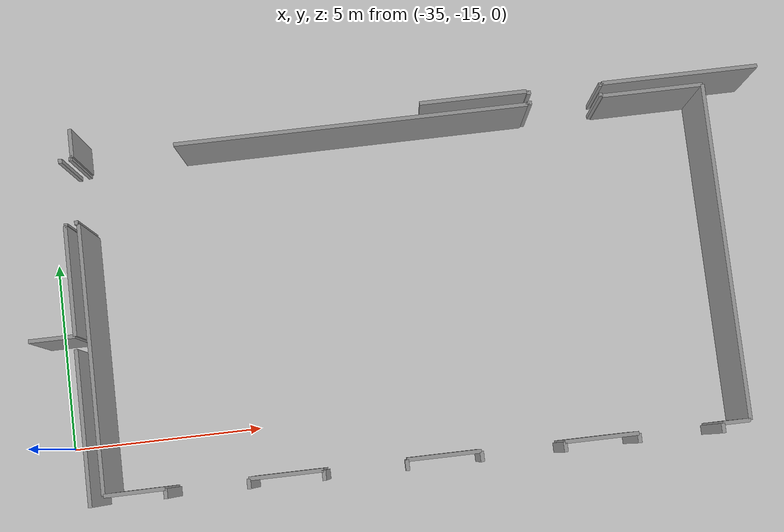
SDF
<sdf version="1.6">
 <world name="default">
  <model name="ground_plane">
   <static>1</static>
   <link name="link">
    <collision name="collision">
     <geometry><plane><normal>0 0 1</normal><size>100 100</size></plane></geometry>
     <surface><friction><ode><mu>100</mu><mu2>50</mu2></ode></friction></surface>
    </collision>
    <visual name="visual">
     <cast_shadows>0</cast_shadows>
     <geometry><plane><normal>0 0 1</normal><size>100 100</size></plane></geometry>
     <material>
      <script><uri>file://media/materials/scripts/gazebo.material</uri><name>Gazebo/Grey</name></script>
     </material>
    </visual>
   </link>
  </model>
  <model name="0510032261_A_40_1_103">
   <static>1</static>
   <link name="Wall_23">
    <collision name="Wall_23_Collision">
     <geometry><box><size>0.111944091487 0.1 2.5</size></box></geometry>
     <pose>0.0559720457433 0 1.25 0 0 0</pose>
    </collision>
    <visual name="Wall_23_Visual">
     <pose>0.0559720457433 0 1.25 0 0 0</pose>
     <geometry><box><size>0.111944091487 0.1 2.5</size></box></geometry>
     <material>
      <script><uri>file://media/materials/scripts/gazebo.material</uri><name>Gazebo/Grey</name></script>
      <ambient>1 1 1 1</ambient>
     </material>
    </visual>
    <pose>14.9550190597 -24.1386277001 0 0 0 -1.57079632679</pose>
   </link>
   <link name="Wall_24">
    <collision name="Wall_24_Collision">
     <geometry><box><size>0.0569250317662 0.1 2.5</size></box></geometry>
     <pose>0.0284625158831 0 1.25 0 0 0</pose>
    </collision>
    <visual name="Wall_24_Visual">
     <pose>0.0284625158831 0 1.25 0 0 0</pose>
     <geometry><box><size>0.0569250317662 0.1 2.5</size></box></geometry>
     <material>
      <script><uri>file://media/materials/scripts/gazebo.material</uri><name>Gazebo/Grey</name></script>
      <ambient>1 1 1 1</ambient>
     </material>
    </visual>
    <pose>14.9550190597 -25.8360864041 0 0 0 -1.57079632679</pose>
   </link>
   <link name="Wall_25">
    <collision name="Wall_25_Collision">
     <geometry><box><size>0.0237611181703 0.1 2.5</size></box></geometry>
     <pose>0.0118805590851 0 1.25 0 0 0</pose>
    </collision>
    <visual name="Wall_25_Visual">
     <pose>0.0118805590851 0 1.25 0 0 0</pose>
     <geometry><box><size>0.0237611181703 0.1 2.5</size></box></geometry>
     <material>
      <script><uri>file://media/materials/scripts/gazebo.material</uri><name>Gazebo/Grey</name></script>
      <ambient>1 1 1 1</ambient>
     </material>
    </visual>
    <pose>14.9550190597 -25.8930114358 0 0 0 3.14159265359</pose>
   </link>
   <link name="Wall_26">
    <collision name="Wall_26_Collision">
     <geometry><box><size>2.84904701398 0.1 2.5</size></box></geometry>
     <pose>1.42452350699 0 1.25 0 0 0</pose>
    </collision>
    <visual name="Wall_26_Visual">
     <pose>1.42452350699 0 1.25 0 0 0</pose>
     <geometry><box><size>2.84904701398 0.1 2.5</size></box></geometry>
     <material>
      <script><uri>file://media/materials/scripts/gazebo.material</uri><name>Gazebo/Grey</name></script>
      <ambient>1 1 1 1</ambient>
     </material>
    </visual>
    <pose>14.9312579416 -25.8930114358 0 0 0 -1.57079632679</pose>
   </link>
   <link name="Wall_27">
    <collision name="Wall_27_Collision">
     <geometry><box><size>1.18996188056 0.1 2.5</size></box></geometry>
     <pose>0.59498094028 0 1.25 0 0 0</pose>
    </collision>
    <visual name="Wall_27_Visual">
     <pose>0.59498094028 0 1.25 0 0 0</pose>
     <geometry><box><size>1.18996188056 0.1 2.5</size></box></geometry>
     <material>
      <script><uri>file://media/materials/scripts/gazebo.material</uri><name>Gazebo/Grey</name></script>
      <ambient>1 1 1 1</ambient>
     </material>
    </visual>
    <pose>14.9312579416 -28.7420584498 0 0 0 3.14159265359</pose>
   </link>
   <link name="Wall_51">
    <collision name="Wall_51_Collision">
     <geometry><box><size>3.9998729352 0.1 2.5</size></box></geometry>
     <pose>1.9999364676 0 1.25 0 0 0</pose>
    </collision>
    <visual name="Wall_51_Visual">
     <pose>1.9999364676 0 1.25 0 0 0</pose>
     <geometry><box><size>3.9998729352 0.1 2.5</size></box></geometry>
     <material>
      <script><uri>file://media/materials/scripts/gazebo.material</uri><name>Gazebo/Grey</name></script>
      <ambient>1 1 1 1</ambient>
     </material>
    </visual>
    <pose>14.9250317662 -29.0768742058 0 0 0 -1.57079632679</pose>
   </link>
   <link name="Wall_159">
    <collision name="Wall_159_Collision">
     <geometry><box><size>2.7876747141 0.1 2.5</size></box></geometry>
     <pose>1.39383735705 0 1.25 0 0 0</pose>
    </collision>
    <visual name="Wall_159_Visual">
     <pose>1.39383735705 0 1.25 0 0 0</pose>
     <geometry><box><size>2.7876747141 0.1 2.5</size></box></geometry>
     <material>
      <script><uri>file://media/materials/scripts/gazebo.material</uri><name>Gazebo/Grey</name></script>
      <ambient>1 1 1 1</ambient>
     </material>
    </visual>
    <pose>24.3198221093 -23.7557814485 0 0 0 0.0</pose>
   </link>
   <link name="Wall_160">
    <collision name="Wall_160_Collision">
     <geometry><box><size>0.0411689961881 0.1 2.5</size></box></geometry>
     <pose>0.020584498094 0 1.25 0 0 0</pose>
    </collision>
    <visual name="Wall_160_Visual">
     <pose>0.020584498094 0 1.25 0 0 0</pose>
     <geometry><box><size>0.0411689961881 0.1 2.5</size></box></geometry>
     <material>
      <script><uri>file://media/materials/scripts/gazebo.material</uri><name>Gazebo/Grey</name></script>
      <ambient>1 1 1 1</ambient>
     </material>
    </visual>
    <pose>27.1074968234 -23.7557814485 0 0 0 -1.57079632679</pose>
   </link>
   <link name="Wall_161">
    <collision name="Wall_161_Collision">
     <geometry><box><size>0.108005082592 0.1 2.5</size></box></geometry>
     <pose>0.0540025412961 0 1.25 0 0 0</pose>
    </collision>
    <visual name="Wall_161_Visual">
     <pose>0.0540025412961 0 1.25 0 0 0</pose>
     <geometry><box><size>0.108005082592 0.1 2.5</size></box></geometry>
     <material>
      <script><uri>file://media/materials/scripts/gazebo.material</uri><name>Gazebo/Grey</name></script>
      <ambient>1 1 1 1</ambient>
     </material>
    </visual>
    <pose>27.1074968234 -23.7969504447 0 0 0 0.0</pose>
   </link>
   <link name="Wall_162">
    <collision name="Wall_162_Collision">
     <geometry><box><size>0.0823379923761 0.1 2.5</size></box></geometry>
     <pose>0.0411689961881 0 1.25 0 0 0</pose>
    </collision>
    <visual name="Wall_162_Visual">
     <pose>0.0411689961881 0 1.25 0 0 0</pose>
     <geometry><box><size>0.0823379923761 0.1 2.5</size></box></geometry>
     <material>
      <script><uri>file://media/materials/scripts/gazebo.material</uri><name>Gazebo/Grey</name></script>
      <ambient>1 1 1 1</ambient>
     </material>
    </visual>
    <pose>28.9888182973 -23.7969504447 0 0 0 0.0</pose>
   </link>
   <link name="Wall_163">
    <collision name="Wall_163_Collision">
     <geometry><box><size>0.025540025413 0.1 2.5</size></box></geometry>
     <pose>0.0127700127065 0 1.25 0 0 0</pose>
    </collision>
    <visual name="Wall_163_Visual">
     <pose>0.0127700127065 0 1.25 0 0 0</pose>
     <geometry><box><size>0.025540025413 0.1 2.5</size></box></geometry>
     <material>
      <script><uri>file://media/materials/scripts/gazebo.material</uri><name>Gazebo/Grey</name></script>
      <ambient>1 1 1 1</ambient>
     </material>
    </visual>
    <pose>29.0711562897 -23.7969504447 0 0 0 1.57079632679</pose>
   </link>
   <link name="Wall_164">
    <collision name="Wall_164_Collision">
     <geometry><box><size>4.06111817027 0.1 2.5</size></box></geometry>
     <pose>2.03055908513 0 1.25 0 0 0</pose>
    </collision>
    <visual name="Wall_164_Visual">
     <pose>2.03055908513 0 1.25 0 0 0</pose>
     <geometry><box><size>4.06111817027 0.1 2.5</size></box></geometry>
     <material>
      <script><uri>file://media/materials/scripts/gazebo.material</uri><name>Gazebo/Grey</name></script>
      <ambient>1 1 1 1</ambient>
     </material>
    </visual>
    <pose>29.0711562897 -23.7714104193 0 0 0 0.0</pose>
   </link>
   <link name="Wall_247">
    <collision name="Wall_247_Collision">
     <geometry><box><size>6.93595933926 0.1 2.5</size></box></geometry>
     <pose>3.46797966963 0 1.25 0 0 0</pose>
    </collision>
    <visual name="Wall_247_Visual">
     <pose>3.46797966963 0 1.25 0 0 0</pose>
     <geometry><box><size>6.93595933926 0.1 2.5</size></box></geometry>
     <material>
      <script><uri>file://media/materials/scripts/gazebo.material</uri><name>Gazebo/Grey</name></script>
      <ambient>1 1 1 1</ambient>
     </material>
    </visual>
    <pose>15.2763659466 -32.826429479 0 0 0 1.57079632679</pose>
   </link>
   <link name="Wall_248">
    <collision name="Wall_248_Collision">
     <geometry><box><size>0.0504447268107 0.1 2.5</size></box></geometry>
     <pose>0.0252223634053 0 1.25 0 0 0</pose>
    </collision>
    <visual name="Wall_248_Visual">
     <pose>0.0252223634053 0 1.25 0 0 0</pose>
     <geometry><box><size>0.0504447268107 0.1 2.5</size></box></geometry>
     <material>
      <script><uri>file://media/materials/scripts/gazebo.material</uri><name>Gazebo/Grey</name></script>
      <ambient>1 1 1 1</ambient>
     </material>
    </visual>
    <pose>15.2763659466 -25.8904701398 0 0 0 3.14159265359</pose>
   </link>
   <link name="Wall_249">
    <collision name="Wall_249_Collision">
     <geometry><box><size>0.101143583227 0.1 2.5</size></box></geometry>
     <pose>0.0505717916137 0 1.25 0 0 0</pose>
    </collision>
    <visual name="Wall_249_Visual">
     <pose>0.0505717916137 0 1.25 0 0 0</pose>
     <geometry><box><size>0.101143583227 0.1 2.5</size></box></geometry>
     <material>
      <script><uri>file://media/materials/scripts/gazebo.material</uri><name>Gazebo/Grey</name></script>
      <ambient>1 1 1 1</ambient>
     </material>
    </visual>
    <pose>15.2259212198 -25.8904701398 0 0 0 1.57079632679</pose>
   </link>
   <link name="Wall_250">
    <collision name="Wall_250_Collision">
     <geometry><box><size>0.0837357052097 0.1 2.5</size></box></geometry>
     <pose>0.0418678526048 0 1.25 0 0 0</pose>
    </collision>
    <visual name="Wall_250_Visual">
     <pose>0.0418678526048 0 1.25 0 0 0</pose>
     <geometry><box><size>0.0837357052097 0.1 2.5</size></box></geometry>
     <material>
      <script><uri>file://media/materials/scripts/gazebo.material</uri><name>Gazebo/Grey</name></script>
      <ambient>1 1 1 1</ambient>
     </material>
    </visual>
    <pose>15.2259212198 -24.2134688691 0 0 0 1.57079632679</pose>
   </link>
   <link name="Wall_251">
    <collision name="Wall_251_Collision">
     <geometry><box><size>0.0397712833545 0.1 2.5</size></box></geometry>
     <pose>0.0198856416773 0 1.25 0 0 0</pose>
    </collision>
    <visual name="Wall_251_Visual">
     <pose>0.0198856416773 0 1.25 0 0 0</pose>
     <geometry><box><size>0.0397712833545 0.1 2.5</size></box></geometry>
     <material>
      <script><uri>file://media/materials/scripts/gazebo.material</uri><name>Gazebo/Grey</name></script>
      <ambient>1 1 1 1</ambient>
     </material>
    </visual>
    <pose>15.2259212198 -24.1297331639 0 0 0 0.0</pose>
   </link>
   <link name="Wall_252">
    <collision name="Wall_252_Collision">
     <geometry><box><size>0.742820838628 0.1 2.5</size></box></geometry>
     <pose>0.371410419314 0 1.25 0 0 0</pose>
    </collision>
    <visual name="Wall_252_Visual">
     <pose>0.371410419314 0 1.25 0 0 0</pose>
     <geometry><box><size>0.742820838628 0.1 2.5</size></box></geometry>
     <material>
      <script><uri>file://media/materials/scripts/gazebo.material</uri><name>Gazebo/Grey</name></script>
      <ambient>1 1 1 1</ambient>
     </material>
    </visual>
    <pose>15.2656925032 -24.1297331639 0 0 0 1.57079632679</pose>
   </link>
   <link name="Wall_255">
    <collision name="Wall_255_Collision">
     <geometry><box><size>9.20088945362 0.1 2.5</size></box></geometry>
     <pose>4.60044472681 0 1.25 0 0 0</pose>
    </collision>
    <visual name="Wall_255_Visual">
     <pose>4.60044472681 0 1.25 0 0 0</pose>
     <geometry><box><size>9.20088945362 0.1 2.5</size></box></geometry>
     <material>
      <script><uri>file://media/materials/scripts/gazebo.material</uri><name>Gazebo/Grey</name></script>
      <ambient>1 1 1 1</ambient>
     </material>
    </visual>
    <pose>17.892249047 -24.1001270648 0 0 0 0.0</pose>
   </link>
   <link name="Wall_256">
    <collision name="Wall_256_Collision">
     <geometry><box><size>0.0278271918679 0.1 2.5</size></box></geometry>
     <pose>0.0139135959339 0 1.25 0 0 0</pose>
    </collision>
    <visual name="Wall_256_Visual">
     <pose>0.0139135959339 0 1.25 0 0 0</pose>
     <geometry><box><size>0.0278271918679 0.1 2.5</size></box></geometry>
     <material>
      <script><uri>file://media/materials/scripts/gazebo.material</uri><name>Gazebo/Grey</name></script>
      <ambient>1 1 1 1</ambient>
     </material>
    </visual>
    <pose>27.0931385006 -24.1001270648 0 0 0 1.57079632679</pose>
   </link>
   <link name="Wall_257">
    <collision name="Wall_257_Collision">
     <geometry><box><size>0.114612452351 0.1 2.5</size></box></geometry>
     <pose>0.0573062261753 0 1.25 0 0 0</pose>
    </collision>
    <visual name="Wall_257_Visual">
     <pose>0.0573062261753 0 1.25 0 0 0</pose>
     <geometry><box><size>0.114612452351 0.1 2.5</size></box></geometry>
     <material>
      <script><uri>file://media/materials/scripts/gazebo.material</uri><name>Gazebo/Grey</name></script>
      <ambient>1 1 1 1</ambient>
     </material>
    </visual>
    <pose>27.0931385006 -24.0722998729 0 0 0 0.0</pose>
   </link>
   <link name="Wall_258">
    <collision name="Wall_258_Collision">
     <geometry><box><size>0.0914866581957 0.1 2.5</size></box></geometry>
     <pose>0.0457433290978 0 1.25 0 0 0</pose>
    </collision>
    <visual name="Wall_258_Visual">
     <pose>0.0457433290978 0 1.25 0 0 0</pose>
     <geometry><box><size>0.0914866581957 0.1 2.5</size></box></geometry>
     <material>
      <script><uri>file://media/materials/scripts/gazebo.material</uri><name>Gazebo/Grey</name></script>
      <ambient>1 1 1 1</ambient>
     </material>
    </visual>
    <pose>28.959974587 -24.0722998729 0 0 0 0.0</pose>
   </link>
   <link name="Wall_259">
    <collision name="Wall_259_Collision">
     <geometry><box><size>0.0278271918679 0.1 2.5</size></box></geometry>
     <pose>0.0139135959339 0 1.25 0 0 0</pose>
    </collision>
    <visual name="Wall_259_Visual">
     <pose>0.0139135959339 0 1.25 0 0 0</pose>
     <geometry><box><size>0.0278271918679 0.1 2.5</size></box></geometry>
     <material>
      <script><uri>file://media/materials/scripts/gazebo.material</uri><name>Gazebo/Grey</name></script>
      <ambient>1 1 1 1</ambient>
     </material>
    </visual>
    <pose>29.0514612452 -24.0722998729 0 0 0 -1.57079632679</pose>
   </link>
   <link name="Wall_260">
    <collision name="Wall_260_Collision">
     <geometry><box><size>2.60355781449 0.1 2.5</size></box></geometry>
     <pose>1.30177890724 0 1.25 0 0 0</pose>
    </collision>
    <visual name="Wall_260_Visual">
     <pose>1.30177890724 0 1.25 0 0 0</pose>
     <geometry><box><size>2.60355781449 0.1 2.5</size></box></geometry>
     <material>
      <script><uri>file://media/materials/scripts/gazebo.material</uri><name>Gazebo/Grey</name></script>
      <ambient>1 1 1 1</ambient>
     </material>
    </visual>
    <pose>29.0514612452 -24.1001270648 0 0 0 0.0</pose>
   </link>
   <link name="Wall_261">
    <collision name="Wall_261_Collision">
     <geometry><box><size>8.71512071156 0.1 2.5</size></box></geometry>
     <pose>4.35756035578 0 1.25 0 0 0</pose>
    </collision>
    <visual name="Wall_261_Visual">
     <pose>4.35756035578 0 1.25 0 0 0</pose>
     <geometry><box><size>8.71512071156 0.1 2.5</size></box></geometry>
     <material>
      <script><uri>file://media/materials/scripts/gazebo.material</uri><name>Gazebo/Grey</name></script>
      <ambient>1 1 1 1</ambient>
     </material>
    </visual>
    <pose>31.6550190597 -24.1001270648 0 0 0 -1.57079632679</pose>
   </link>
   <link name="Wall_262">
    <collision name="Wall_262_Collision">
     <geometry><box><size>0.706988564168 0.1 2.5</size></box></geometry>
     <pose>0.353494282084 0 1.25 0 0 0</pose>
    </collision>
    <visual name="Wall_262_Visual">
     <pose>0.353494282084 0 1.25 0 0 0</pose>
     <geometry><box><size>0.706988564168 0.1 2.5</size></box></geometry>
     <material>
      <script><uri>file://media/materials/scripts/gazebo.material</uri><name>Gazebo/Grey</name></script>
      <ambient>1 1 1 1</ambient>
     </material>
    </visual>
    <pose>31.6550190597 -32.8152477764 0 0 0 3.14159265359</pose>
   </link>
   <link name="Wall_263">
    <collision name="Wall_263_Collision">
     <geometry><box><size>0.247141041931 0.1 2.5</size></box></geometry>
     <pose>0.123570520966 0 1.25 0 0 0</pose>
    </collision>
    <visual name="Wall_263_Visual">
     <pose>0.123570520966 0 1.25 0 0 0</pose>
     <geometry><box><size>0.247141041931 0.1 2.5</size></box></geometry>
     <material>
      <script><uri>file://media/materials/scripts/gazebo.material</uri><name>Gazebo/Grey</name></script>
      <ambient>1 1 1 1</ambient>
     </material>
    </visual>
    <pose>30.9480304956 -32.8152477764 0 0 0 -1.57079632679</pose>
   </link>
   <link name="Wall_264">
    <collision name="Wall_264_Collision">
     <geometry><box><size>0.243583227446 0.1 2.5</size></box></geometry>
     <pose>0.121791613723 0 1.25 0 0 0</pose>
    </collision>
    <visual name="Wall_264_Visual">
     <pose>0.121791613723 0 1.25 0 0 0</pose>
     <geometry><box><size>0.243583227446 0.1 2.5</size></box></geometry>
     <material>
      <script><uri>file://media/materials/scripts/gazebo.material</uri><name>Gazebo/Grey</name></script>
      <ambient>1 1 1 1</ambient>
     </material>
    </visual>
    <pose>28.8175349428 -33.0623888183 0 0 0 1.57079632679</pose>
   </link>
   <link name="Wall_265">
    <collision name="Wall_265_Collision">
     <geometry><box><size>1.87725540025 0.1 2.5</size></box></geometry>
     <pose>0.938627700127 0 1.25 0 0 0</pose>
    </collision>
    <visual name="Wall_265_Visual">
     <pose>0.938627700127 0 1.25 0 0 0</pose>
     <geometry><box><size>1.87725540025 0.1 2.5</size></box></geometry>
     <material>
      <script><uri>file://media/materials/scripts/gazebo.material</uri><name>Gazebo/Grey</name></script>
      <ambient>1 1 1 1</ambient>
     </material>
    </visual>
    <pose>28.8175349428 -32.8188055909 0 0 0 3.14159265359</pose>
   </link>
   <link name="Wall_266">
    <collision name="Wall_266_Collision">
     <geometry><box><size>0.257941550191 0.1 2.5</size></box></geometry>
     <pose>0.128970775095 0 1.25 0 0 0</pose>
    </collision>
    <visual name="Wall_266_Visual">
     <pose>0.128970775095 0 1.25 0 0 0</pose>
     <geometry><box><size>0.257941550191 0.1 2.5</size></box></geometry>
     <material>
      <script><uri>file://media/materials/scripts/gazebo.material</uri><name>Gazebo/Grey</name></script>
      <ambient>1 1 1 1</ambient>
     </material>
    </visual>
    <pose>26.9402795426 -32.8188055909 0 0 0 -1.57079632679</pose>
   </link>
   <link name="Wall_267">
    <collision name="Wall_267_Collision">
     <geometry><box><size>0.272299872935 0.1 2.5</size></box></geometry>
     <pose>0.136149936468 0 1.25 0 0 0</pose>
    </collision>
    <visual name="Wall_267_Visual">
     <pose>0.136149936468 0 1.25 0 0 0</pose>
     <geometry><box><size>0.272299872935 0.1 2.5</size></box></geometry>
     <material>
      <script><uri>file://media/materials/scripts/gazebo.material</uri><name>Gazebo/Grey</name></script>
      <ambient>1 1 1 1</ambient>
     </material>
    </visual>
    <pose>24.8241423126 -33.076747141 0 0 0 1.57079632679</pose>
   </link>
   <link name="Wall_268">
    <collision name="Wall_268_Collision">
     <geometry><box><size>1.891613723 0.1 2.5</size></box></geometry>
     <pose>0.945806861499 0 1.25 0 0 0</pose>
    </collision>
    <visual name="Wall_268_Visual">
     <pose>0.945806861499 0 1.25 0 0 0</pose>
     <geometry><box><size>1.891613723 0.1 2.5</size></box></geometry>
     <material>
      <script><uri>file://media/materials/scripts/gazebo.material</uri><name>Gazebo/Grey</name></script>
      <ambient>1 1 1 1</ambient>
     </material>
    </visual>
    <pose>24.8241423126 -32.8044472681 0 0 0 3.14159265359</pose>
   </link>
   <link name="Wall_269">
    <collision name="Wall_269_Collision">
     <geometry><box><size>0.277001270648 0.1 2.5</size></box></geometry>
     <pose>0.138500635324 0 1.25 0 0 0</pose>
    </collision>
    <visual name="Wall_269_Visual">
     <pose>0.138500635324 0 1.25 0 0 0</pose>
     <geometry><box><size>0.277001270648 0.1 2.5</size></box></geometry>
     <material>
      <script><uri>file://media/materials/scripts/gazebo.material</uri><name>Gazebo/Grey</name></script>
      <ambient>1 1 1 1</ambient>
     </material>
    </visual>
    <pose>22.9325285896 -32.8044472681 0 0 0 -1.57079632679</pose>
   </link>
   <link name="Wall_270">
    <collision name="Wall_270_Collision">
     <geometry><box><size>0.263278271919 0.1 2.5</size></box></geometry>
     <pose>0.131639135959 0 1.25 0 0 0</pose>
    </collision>
    <visual name="Wall_270_Visual">
     <pose>0.131639135959 0 1.25 0 0 0</pose>
     <geometry><box><size>0.263278271919 0.1 2.5</size></box></geometry>
     <material>
      <script><uri>file://media/materials/scripts/gazebo.material</uri><name>Gazebo/Grey</name></script>
      <ambient>1 1 1 1</ambient>
     </material>
    </visual>
    <pose>20.8280813215 -33.0814485388 0 0 0 1.57079632679</pose>
   </link>
   <link name="Wall_271">
    <collision name="Wall_271_Collision">
     <geometry><box><size>1.89529860229 0.1 2.5</size></box></geometry>
     <pose>0.947649301144 0 1.25 0 0 0</pose>
    </collision>
    <visual name="Wall_271_Visual">
     <pose>0.947649301144 0 1.25 0 0 0</pose>
     <geometry><box><size>1.89529860229 0.1 2.5</size></box></geometry>
     <material>
      <script><uri>file://media/materials/scripts/gazebo.material</uri><name>Gazebo/Grey</name></script>
      <ambient>1 1 1 1</ambient>
     </material>
    </visual>
    <pose>20.8280813215 -32.8181702668 0 0 0 3.14159265359</pose>
   </link>
   <link name="Wall_272">
    <collision name="Wall_272_Collision">
     <geometry><box><size>0.254129606099 0.1 2.5</size></box></geometry>
     <pose>0.12706480305 0 1.25 0 0 0</pose>
    </collision>
    <visual name="Wall_272_Visual">
     <pose>0.12706480305 0 1.25 0 0 0</pose>
     <geometry><box><size>0.254129606099 0.1 2.5</size></box></geometry>
     <material>
      <script><uri>file://media/materials/scripts/gazebo.material</uri><name>Gazebo/Grey</name></script>
      <ambient>1 1 1 1</ambient>
     </material>
    </visual>
    <pose>18.9327827192 -32.8181702668 0 0 0 -1.57079632679</pose>
   </link>
   <link name="Wall_273">
    <collision name="Wall_273_Collision">
     <geometry><box><size>0.253367217281 0.1 2.5</size></box></geometry>
     <pose>0.12668360864 0 1.25 0 0 0</pose>
    </collision>
    <visual name="Wall_273_Visual">
     <pose>0.12668360864 0 1.25 0 0 0</pose>
     <geometry><box><size>0.253367217281 0.1 2.5</size></box></geometry>
     <material>
      <script><uri>file://media/materials/scripts/gazebo.material</uri><name>Gazebo/Grey</name></script>
      <ambient>1 1 1 1</ambient>
     </material>
    </visual>
    <pose>16.8310038119 -33.0722998729 0 0 0 1.57079632679</pose>
   </link>
   <link name="Wall_274">
    <collision name="Wall_274_Collision">
     <geometry><box><size>1.55465594091 0.1 2.5</size></box></geometry>
     <pose>0.777327970457 0 1.25 0 0 0</pose>
    </collision>
    <visual name="Wall_274_Visual">
     <pose>0.777327970457 0 1.25 0 0 0</pose>
     <geometry><box><size>1.55465594091 0.1 2.5</size></box></geometry>
     <material>
      <script><uri>file://media/materials/scripts/gazebo.material</uri><name>Gazebo/Grey</name></script>
      <ambient>1 1 1 1</ambient>
     </material>
    </visual>
    <pose>16.8310038119 -32.8189326557 0 0 0 -3.13677045966</pose>
   </link>
   <pose>-49.15 16.5314485388 0 0 0 0</pose>
  </model>
 </world>
</sdf>
